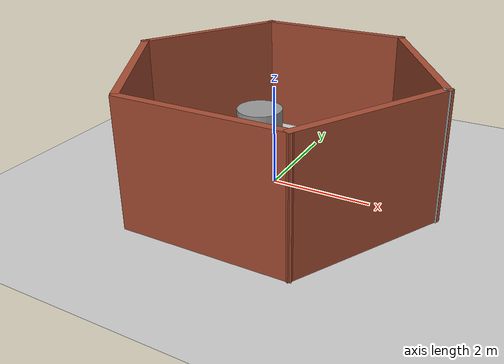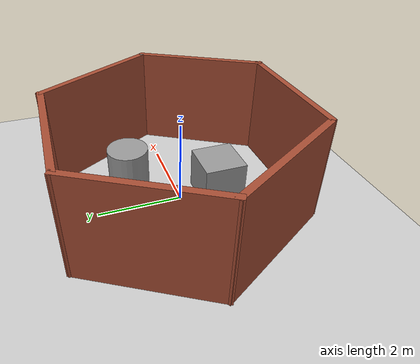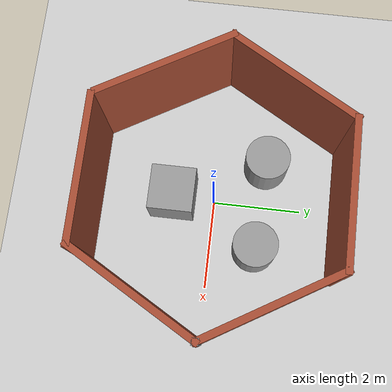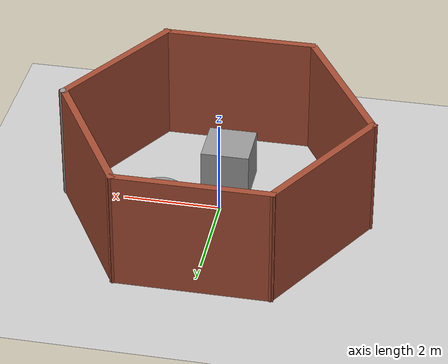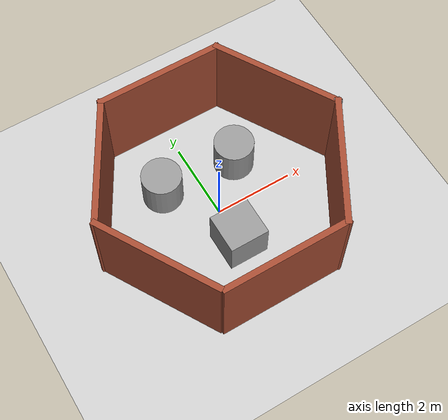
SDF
<sdf version="1.7">
 <world name="default">
  <light name="sun" type="directional">
   <pose>0 0 10 0 -0 0</pose>
   <diffuse>0.8 0.8 0.8 1</diffuse>
   <specular>0.2 0.2 0.2 1</specular>
   <attenuation>
    <range>1000</range>
    <constant>0.9</constant>
    <linear>0.01</linear>
    <quadratic>0.001</quadratic>
   </attenuation>
   <direction>-0.5 0.1 -0.9</direction>
   <spot><inner_angle>0</inner_angle><outer_angle>0</outer_angle><falloff>0</falloff></spot>
  </light>
  <model name="ground_plane">
   <static>1</static>
   <link name="link">
    <collision name="collision">
     <geometry><plane><normal>0 0 1</normal><size>100 100</size></plane></geometry>
     <surface><friction><ode><mu>100</mu><mu2>50</mu2></ode></friction></surface>
    </collision>
    <visual name="visual">
     <cast_shadows>0</cast_shadows>
     <geometry><plane><normal>0 0 1</normal><size>100 100</size></plane></geometry>
     <material>
      <script><uri>file://media/materials/scripts/gazebo.material</uri><name>Gazebo/Grey</name></script>
     </material>
    </visual>
   </link>
  </model>
  <gravity>0 0 -9.8</gravity>
  <magnetic_field>6e-06 2.3e-05 -4.2e-05</magnetic_field>
  <atmosphere type="adiabatic"/>
  <physics type="ode">
   <max_step_size>0.001</max_step_size>
   <real_time_factor>1</real_time_factor>
   <real_time_update_rate>1000</real_time_update_rate>
  </physics>
  <scene><ambient>0.4 0.4 0.4 1</ambient><background>0.7 0.7 0.7 1</background><shadows>1</shadows></scene>
  <audio><device>default</device></audio>
  <spherical_coordinates>
   <surface_model>EARTH_WGS84</surface_model>
   <latitude_deg>0</latitude_deg>
   <longitude_deg>0</longitude_deg>
   <elevation>0</elevation>
   <heading_deg>0</heading_deg>
  </spherical_coordinates>
  <model name="s6">
   <pose>0.060122 0.045122 0 0 -0 0</pose>
   <link name="Wall_16">
    <collision name="Wall_16_Collision">
     <geometry><box><size>3.25 0.15 2.5</size></box></geometry>
     <pose>0 0 1.25 0 -0 0</pose>
    </collision>
    <visual name="Wall_16_Visual">
     <pose>0 0 1.25 0 -0 0</pose>
     <geometry><box><size>3.25 0.15 2.5</size></box></geometry>
     <material>
      <script><uri>file://media/materials/scripts/gazebo.material</uri><name>Gazebo/Bricks</name></script>
      <ambient>1 1 1 1</ambient>
     </material>
     <meta><layer>0</layer></meta>
    </visual>
    <pose>-0.040122 2.72488 0 0 -0 0</pose>
   </link>
   <link name="Wall_18">
    <collision name="Wall_18_Collision">
     <geometry><box><size>3.25 0.15 2.5</size></box></geometry>
     <pose>0 0 1.25 0 -0 0</pose>
    </collision>
    <visual name="Wall_18_Visual">
     <pose>0 0 1.25 0 -0 0</pose>
     <geometry><box><size>3.25 0.15 2.5</size></box></geometry>
     <material>
      <script><uri>file://media/materials/scripts/gazebo.material</uri><name>Gazebo/Bricks</name></script>
      <ambient>1 1 1 1</ambient>
     </material>
     <meta><layer>0</layer></meta>
    </visual>
    <pose>-2.36512 1.38254 0 0 -0 -2.0944</pose>
   </link>
   <link name="Wall_19">
    <collision name="Wall_19_Collision">
     <geometry><box><size>3.25 0.15 2.5</size></box></geometry>
     <pose>0 0 1.25 0 -0 0</pose>
    </collision>
    <visual name="Wall_19_Visual">
     <pose>0 0 1.25 0 -0 0</pose>
     <geometry><box><size>3.25 0.15 2.5</size></box></geometry>
     <material>
      <script><uri>file://media/materials/scripts/gazebo.material</uri><name>Gazebo/Bricks</name></script>
      <ambient>1 1 1 1</ambient>
     </material>
     <meta><layer>0</layer></meta>
    </visual>
    <pose>-2.36512 -1.30214 0 0 -0 -1.0472</pose>
   </link>
   <link name="Wall_22">
    <collision name="Wall_22_Collision">
     <geometry><box><size>3.25 0.15 2.5</size></box></geometry>
     <pose>0 0 1.25 0 -0 0</pose>
    </collision>
    <visual name="Wall_22_Visual">
     <pose>0 0 1.25 0 -0 0</pose>
     <geometry><box><size>3.25 0.15 2.5</size></box></geometry>
     <material>
      <script><uri>file://media/materials/scripts/gazebo.material</uri><name>Gazebo/Bricks</name></script>
      <ambient>1 1 1 1</ambient>
     </material>
     <meta><layer>0</layer></meta>
    </visual>
    <pose>0.039878 -2.72512 0 0 -0 3.14159</pose>
   </link>
   <link name="Wall_24">
    <collision name="Wall_24_Collision">
     <geometry><box><size>3.25 0.15 2.5</size></box></geometry>
     <pose>0 0 1.25 0 -0 0</pose>
    </collision>
    <visual name="Wall_24_Visual">
     <pose>0 0 1.25 0 -0 0</pose>
     <geometry><box><size>3.25 0.15 2.5</size></box></geometry>
     <material>
      <script><uri>file://media/materials/scripts/gazebo.material</uri><name>Gazebo/Bricks</name></script>
      <ambient>1 1 1 1</ambient>
     </material>
     <meta><layer>0</layer></meta>
    </visual>
    <pose>2.36488 -1.38278 0 0 -0 1.0472</pose>
   </link>
   <link name="Wall_25">
    <collision name="Wall_25_Collision">
     <geometry><box><size>0.15 0.15 2.5</size></box></geometry>
     <pose>0 0 1.25 0 -0 0</pose>
    </collision>
    <visual name="Wall_25_Visual">
     <pose>0 0 1.25 0 -0 0</pose>
     <geometry><box><size>0.15 0.15 2.5</size></box></geometry>
     <material>
      <script><uri>file://media/materials/scripts/gazebo.material</uri><name>Gazebo/Grey</name></script>
      <ambient>1 1 1 1</ambient>
     </material>
     <meta><layer>0</layer></meta>
    </visual>
    <pose>3.13988 -0.040443 0 0 -0 0</pose>
   </link>
   <link name="Wall_28">
    <collision name="Wall_28_Collision">
     <geometry><box><size>3.35997 0.15 2.5</size></box></geometry>
     <pose>0 0 1.25 0 -0 0</pose>
    </collision>
    <visual name="Wall_28_Visual">
     <pose>0 0 1.25 0 -0 0</pose>
     <geometry><box><size>3.35997 0.15 2.5</size></box></geometry>
     <material>
      <script><uri>file://media/materials/scripts/gazebo.material</uri><name>Gazebo/Bricks</name></script>
      <ambient>1 1 1 1</ambient>
     </material>
     <meta><layer>0</layer></meta>
    </visual>
    <pose>2.32488 1.34222 0 0 -0 -1.03818</pose>
   </link>
   <static>1</static>
  </model>
  <model name="unit_box">
   <pose>-0.02287 -0.940762 0.5 0 -0 0</pose>
   <link name="link">
    <inertial>
     <mass>1</mass>
     <inertia>
      <ixx>0.166667</ixx>
      <ixy>0</ixy>
      <ixz>0</ixz>
      <iyy>0.166667</iyy>
      <iyz>0</iyz>
      <izz>0.166667</izz>
     </inertia>
    </inertial>
    <collision name="collision"><geometry><box><size>1 1 1</size></box></geometry></collision>
    <visual name="visual">
     <geometry><box><size>1 1 1</size></box></geometry>
     <material>
      <script><name>Gazebo/Grey</name><uri>file://media/materials/scripts/gazebo.material</uri></script>
     </material>
    </visual>
   </link>
  </model>
  <model name="unit_cylinder">
   <pose>-0.951239 1.11304 0.5 0 -0 0</pose>
   <link name="link">
    <inertial>
     <mass>1</mass>
     <inertia><ixx>0.145833</ixx><ixy>0</ixy><ixz>0</ixz><iyy>0.145833</iyy><iyz>0</iyz><izz>0.125</izz></inertia>
    </inertial>
    <collision name="collision">
     <geometry><cylinder><radius>0.5</radius><length>1</length></cylinder></geometry>
    </collision>
    <visual name="visual">
     <geometry><cylinder><radius>0.5</radius><length>1</length></cylinder></geometry>
     <material>
      <script><name>Gazebo/Grey</name><uri>file://media/materials/scripts/gazebo.material</uri></script>
     </material>
    </visual>
   </link>
  </model>
  <model name="unit_cylinder_0">
   <pose>1.02305 1.02002 0.5 0 -0 0</pose>
   <link name="link">
    <inertial>
     <mass>1</mass>
     <inertia><ixx>0.145833</ixx><ixy>0</ixy><ixz>0</ixz><iyy>0.145833</iyy><iyz>0</iyz><izz>0.125</izz></inertia>
    </inertial>
    <collision name="collision">
     <geometry><cylinder><radius>0.5</radius><length>1</length></cylinder></geometry>
    </collision>
    <visual name="visual">
     <geometry><cylinder><radius>0.5</radius><length>1</length></cylinder></geometry>
     <material>
      <script><name>Gazebo/Grey</name><uri>file://media/materials/scripts/gazebo.material</uri></script>
     </material>
    </visual>
   </link>
  </model>
 </world>
</sdf>
